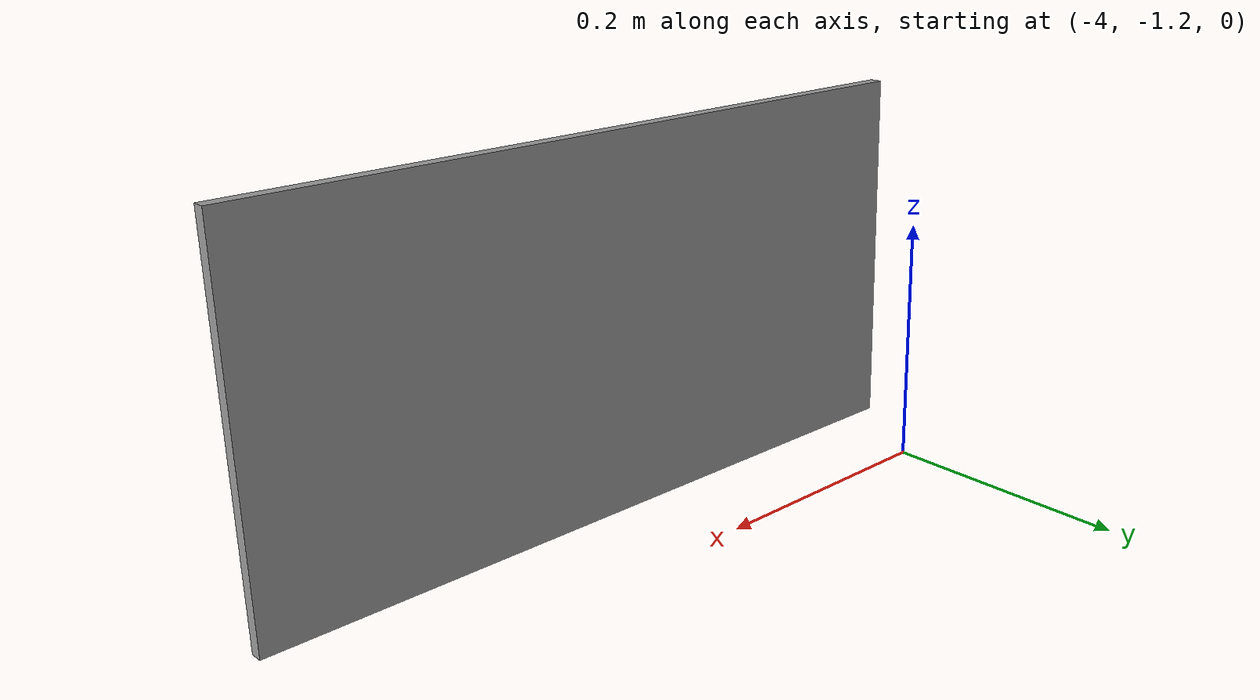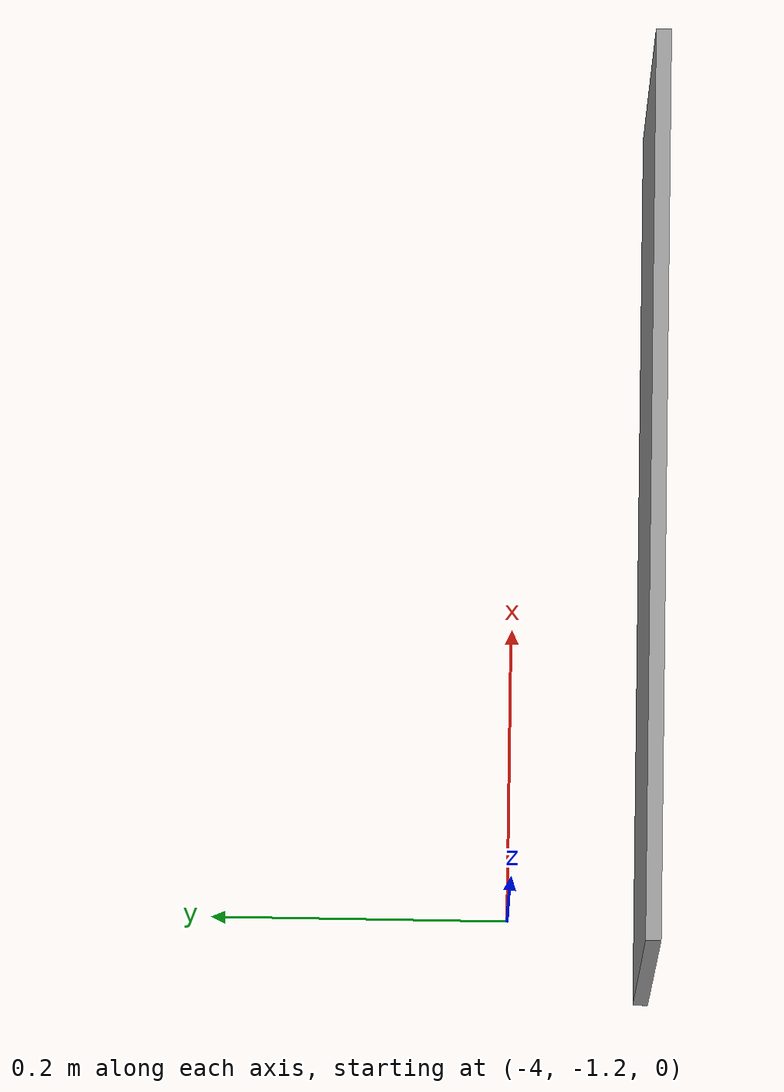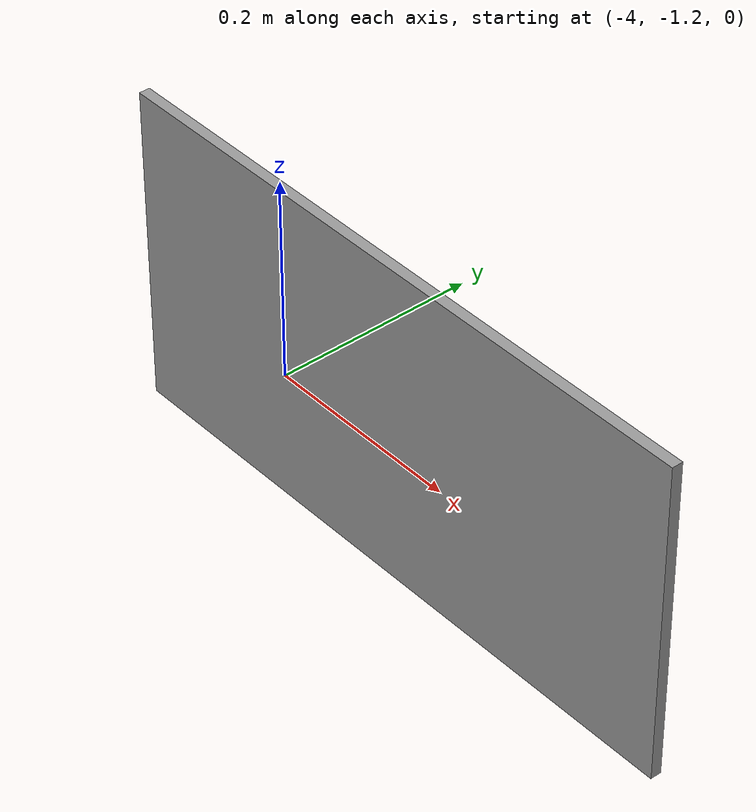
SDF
<?xml version='1.0'?>
<sdf version='1.7'>
  <model name='FUSTA_0.6'>
    <pose>-2.0275 -0.6475 0 0 -0 0</pose>
    <link name='Wall_4'>
      <collision name='Wall_4_Collision'>
        <geometry>
          <box>
            <size>0.6 0.01 0.3</size>
          </box>
        </geometry>
        <pose>0 0 0.15 0 -0 0</pose>
      </collision>
      <visual name='Wall_4_Visual'>
        <pose>0 0 0.15 0 -0 0</pose>
        <geometry>
          <box>
            <size>0.6 0.01 0.3</size>
          </box>
        </geometry>
        <material>
          <script>
            <uri>file://media/materials/scripts/gazebo.material</uri>
            <name>Gazebo/Grey</name>
          </script>
          <ambient>1 1 1 1</ambient>
        </material>
        <meta>
          <layer>0</layer>
        </meta>
      </visual>
      <pose>-1.7275 -0.6425 0 0 -0 0</pose>
    </link>
    <static>1</static>
  </model>
</sdf>
